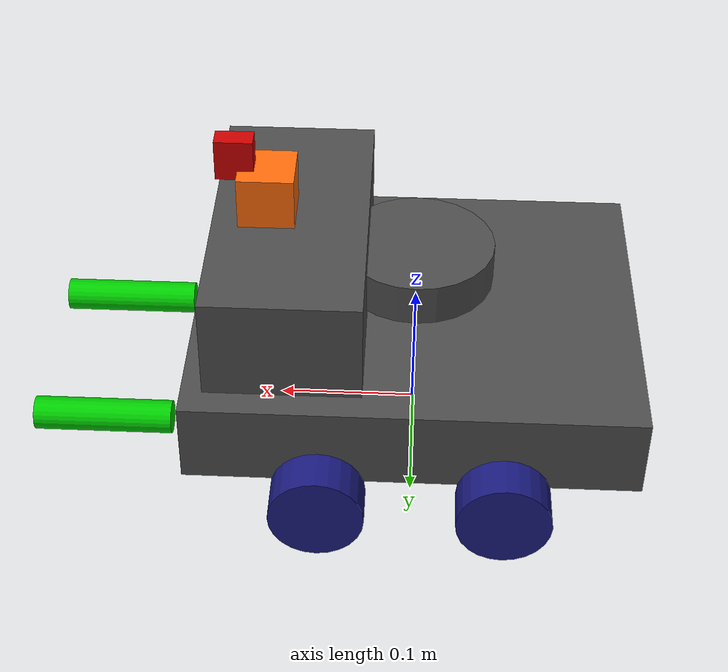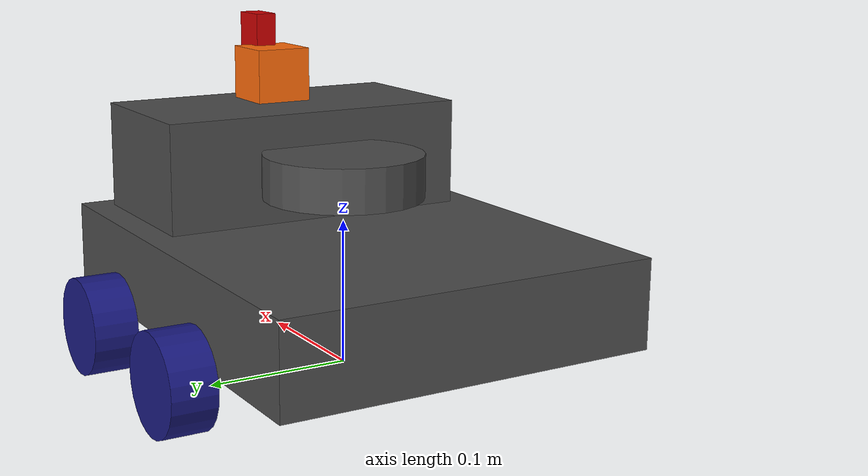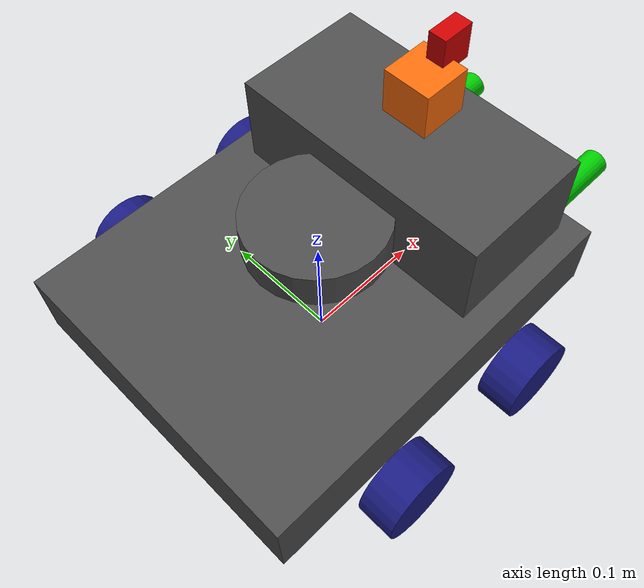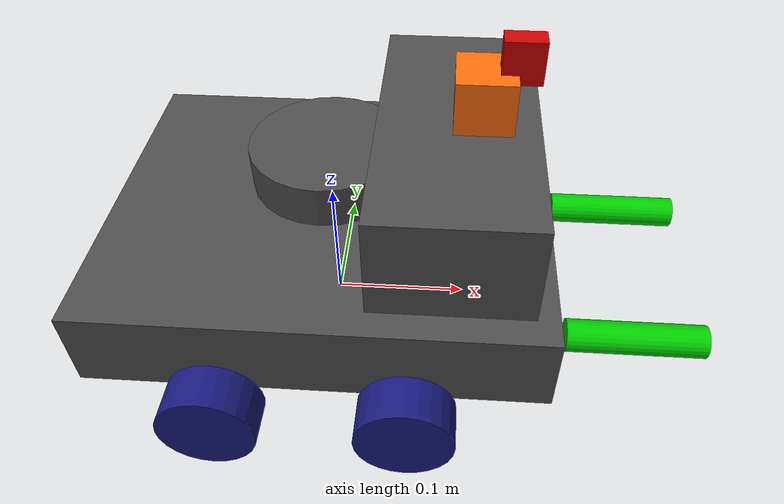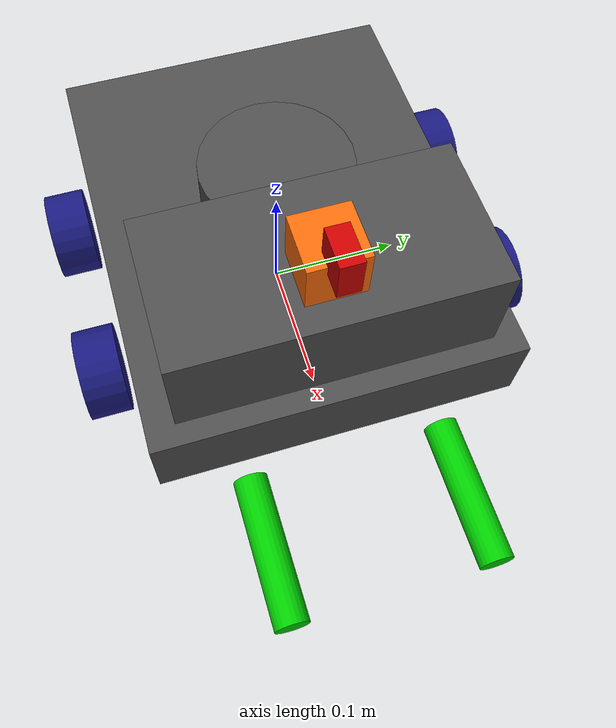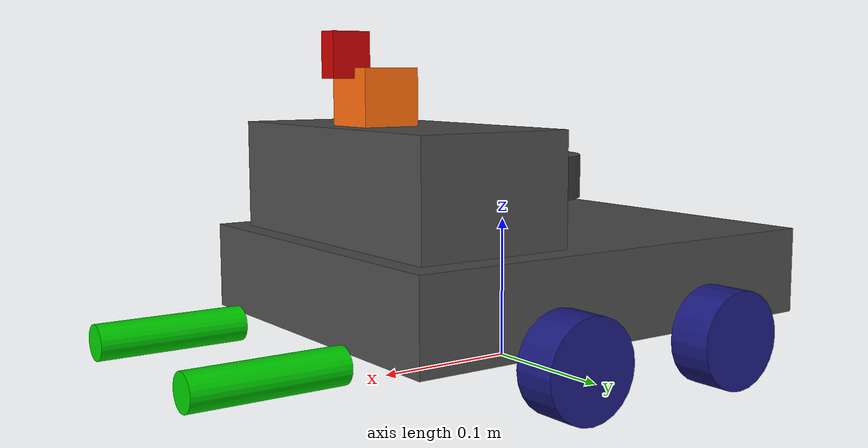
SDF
<?xml version="1.0" ?>
<sdf version="1.9">
  <model name="mecanumbot">
    <pose>0 0 0.0096 0 0 0</pose>

    <link name="base_link">
      <inertial>
        <mass>3.0</mass>
        <pose>0 0 0.06 0 0 0</pose>
        <inertia>
          <ixx>0.04</ixx><ixy>0</ixy><ixz>0</ixz>
          <iyy>0.04</iyy><iyz>0</iyz>
          <izz>0.04</izz>
        </inertia>
      </inertial>

      <collision name="body_collision">
        <pose>0 0 0.055 0 0 0</pose>
        <geometry><box><size>0.32 0.26 0.06</size></box></geometry>
        <surface>
          <friction><ode><mu>1.0</mu><mu2>1.0</mu2></ode></friction>
        </surface>
      </collision>

      <visual name="body_visual">
        <pose>0 0 0.055 0 0 0</pose>
        <geometry><box><size>0.32 0.26 0.06</size></box></geometry>
        <material><ambient>0.3 0.3 0.3 1</ambient><diffuse>0.3 0.3 0.3 1</diffuse></material>
      </visual>

      <visual name="tower_visual">
        <pose>0.09 0 0.12 0 0 0</pose>
        <geometry><box><size>0.11 0.22 0.08</size></box></geometry>
        <material><ambient>0.3 0.3 0.3 1</ambient><diffuse>0.3 0.3 0.3 1</diffuse></material>
      </visual>
    </link>

    <!-- Wheels. Frictionless on purpose: see the header comment. -->
    <link name="wheel_frontleft_link">
      <pose relative_to="base_link">0.064 0.1522 0.02345 -1.5707963 0 0</pose>
      <inertial>
        <mass>0.15</mass>
        <inertia><ixx>0.0002</ixx><ixy>0</ixy><ixz>0</ixz><iyy>0.0002</iyy><iyz>0</iyz><izz>0.0002</izz></inertia>
      </inertial>
      <collision name="collision">
        <geometry><cylinder><radius>0.033</radius><length>0.030</length></cylinder></geometry>
        <surface><friction><ode><mu>0.0</mu><mu2>0.0</mu2></ode></friction></surface>
      </collision>
      <visual name="visual">
        <geometry><cylinder><radius>0.033</radius><length>0.030</length></cylinder></geometry>
        <material><ambient>0.1 0.1 0.5 1</ambient><diffuse>0.1 0.1 0.5 1</diffuse></material>
      </visual>
    </link>
    <joint name="wheel_frontleft_joint" type="revolute">
      <parent>base_link</parent><child>wheel_frontleft_link</child>
      <axis><xyz>0 0 1</xyz><limit><lower>-1e16</lower><upper>1e16</upper></limit></axis>
    </joint>

    <link name="wheel_backleft_link">
      <pose relative_to="base_link">-0.064 0.1522 0.02345 -1.5707963 0 0</pose>
      <inertial>
        <mass>0.15</mass>
        <inertia><ixx>0.0002</ixx><ixy>0</ixy><ixz>0</ixz><iyy>0.0002</iyy><iyz>0</iyz><izz>0.0002</izz></inertia>
      </inertial>
      <collision name="collision">
        <geometry><cylinder><radius>0.033</radius><length>0.030</length></cylinder></geometry>
        <surface><friction><ode><mu>0.0</mu><mu2>0.0</mu2></ode></friction></surface>
      </collision>
      <visual name="visual">
        <geometry><cylinder><radius>0.033</radius><length>0.030</length></cylinder></geometry>
        <material><ambient>0.1 0.1 0.5 1</ambient><diffuse>0.1 0.1 0.5 1</diffuse></material>
      </visual>
    </link>
    <joint name="wheel_backleft_joint" type="revolute">
      <parent>base_link</parent><child>wheel_backleft_link</child>
      <axis><xyz>0 0 1</xyz><limit><lower>-1e16</lower><upper>1e16</upper></limit></axis>
    </joint>

    <link name="wheel_frontright_link">
      <pose relative_to="base_link">0.064 -0.1522 0.02345 1.5707963 0 0</pose>
      <inertial>
        <mass>0.15</mass>
        <inertia><ixx>0.0002</ixx><ixy>0</ixy><ixz>0</ixz><iyy>0.0002</iyy><iyz>0</iyz><izz>0.0002</izz></inertia>
      </inertial>
      <collision name="collision">
        <geometry><cylinder><radius>0.033</radius><length>0.030</length></cylinder></geometry>
        <surface><friction><ode><mu>0.0</mu><mu2>0.0</mu2></ode></friction></surface>
      </collision>
      <visual name="visual">
        <geometry><cylinder><radius>0.033</radius><length>0.030</length></cylinder></geometry>
        <material><ambient>0.1 0.1 0.5 1</ambient><diffuse>0.1 0.1 0.5 1</diffuse></material>
      </visual>
    </link>
    <joint name="wheel_frontright_joint" type="revolute">
      <parent>base_link</parent><child>wheel_frontright_link</child>
      <axis><xyz>0 0 1</xyz><limit><lower>-1e16</lower><upper>1e16</upper></limit></axis>
    </joint>

    <link name="wheel_backright_link">
      <pose relative_to="base_link">-0.064 -0.1522 0.02345 1.5707963 0 0</pose>
      <inertial>
        <mass>0.15</mass>
        <inertia><ixx>0.0002</ixx><ixy>0</ixy><ixz>0</ixz><iyy>0.0002</iyy><iyz>0</iyz><izz>0.0002</izz></inertia>
      </inertial>
      <collision name="collision">
        <geometry><cylinder><radius>0.033</radius><length>0.030</length></cylinder></geometry>
        <surface><friction><ode><mu>0.0</mu><mu2>0.0</mu2></ode></friction></surface>
      </collision>
      <visual name="visual">
        <geometry><cylinder><radius>0.033</radius><length>0.030</length></cylinder></geometry>
        <material><ambient>0.1 0.1 0.5 1</ambient><diffuse>0.1 0.1 0.5 1</diffuse></material>
      </visual>
    </link>
    <joint name="wheel_backright_joint" type="revolute">
      <parent>base_link</parent><child>wheel_backright_link</child>
      <axis><xyz>0 0 1</xyz><limit><lower>-1e16</lower><upper>1e16</upper></limit></axis>
    </joint>

    <!-- Accessories: the neck tilt carries the camera and is the gesture channel
         for the Doglike condition, so it is actuated here and not just in RViz. -->
    <link name="head_link">
      <pose relative_to="base_link">0.1063 0 0.1679 1.5707963 0 0</pose>
      <inertial>
        <mass>0.08</mass>
        <inertia><ixx>0.0002</ixx><ixy>0</ixy><ixz>0</ixz><iyy>0.0002</iyy><iyz>0</iyz><izz>0.0002</izz></inertia>
      </inertial>
      <visual name="visual">
        <geometry><box><size>0.04 0.06 0.04</size></box></geometry>
        <material><ambient>1.0 0.42 0.04 1</ambient><diffuse>1.0 0.42 0.04 1</diffuse></material>
      </visual>
    </link>
    <joint name="head_joint" type="revolute">
      <parent>base_link</parent><child>head_link</child>
      <axis><xyz>0 0 1</xyz><limit><lower>-1.57</lower><upper>1.57</upper><effort>5.0</effort><velocity>1.0</velocity></limit></axis>
    </joint>

    <link name="camera_link">
      <pose relative_to="head_link">0.022 0.038 0 0 -1.5707963 0</pose>
      <inertial>
        <mass>0.01</mass>
        <inertia><ixx>1e-5</ixx><ixy>0</ixy><ixz>0</ixz><iyy>1e-5</iyy><iyz>0</iyz><izz>1e-5</izz></inertia>
      </inertial>
      <visual name="visual">
        <geometry><box><size>0.015 0.030 0.027</size></box></geometry>
        <material><ambient>0.8 0 0 1</ambient><diffuse>0.8 0 0 1</diffuse></material>
      </visual>
      <sensor name="camera" type="camera">
        <pose>0 0 0 0 1.5707963 0</pose>
        <update_rate>15</update_rate>
        <topic>camera/image_raw</topic>
        <camera>
          <horizontal_fov>1.0471976</horizontal_fov>
          <image><width>640</width><height>480</height><format>R8G8B8</format></image>
          <clip><near>0.05</near><far>12.0</far></clip>
        </camera>
      </sensor>
    </link>
    <joint name="camera_joint" type="fixed">
      <parent>head_link</parent><child>camera_link</child>
    </joint>

    <link name="grabber_left_link">
      <pose relative_to="base_link">0.174 0.070 0.024 0 0 0</pose>
      <inertial>
        <mass>0.05</mass>
        <inertia><ixx>1e-4</ixx><ixy>0</ixy><ixz>0</ixz><iyy>1e-4</iyy><iyz>0</iyz><izz>1e-4</izz></inertia>
      </inertial>
      <collision name="collision">
        <pose>0.05 0 0 0 1.5707963 0</pose>
        <geometry><cylinder><radius>0.012</radius><length>0.10</length></cylinder></geometry>
        <surface>
          <friction><ode><mu>1.5</mu><mu2>1.5</mu2></ode></friction>
        </surface>
      </collision>
      <visual name="visual">
        <pose>0.05 0 0 0 1.5707963 0</pose>
        <geometry><cylinder><radius>0.012</radius><length>0.10</length></cylinder></geometry>
        <material><ambient>0 0.8 0 1</ambient><diffuse>0 0.8 0 1</diffuse></material>
      </visual>
    </link>
    <joint name="grabber_left_joint" type="revolute">
      <parent>base_link</parent><child>grabber_left_link</child>
      <axis><xyz>0 0 -1</xyz><limit><lower>-1.57</lower><upper>1.57</upper><effort>5.0</effort><velocity>1.0</velocity></limit></axis>
    </joint>

    <link name="grabber_right_link">
      <pose relative_to="base_link">0.174 -0.070 0.024 0 0 0</pose>
      <inertial>
        <mass>0.05</mass>
        <inertia><ixx>1e-4</ixx><ixy>0</ixy><ixz>0</ixz><iyy>1e-4</iyy><iyz>0</iyz><izz>1e-4</izz></inertia>
      </inertial>
      <collision name="collision">
        <pose>0.05 0 0 0 1.5707963 0</pose>
        <geometry><cylinder><radius>0.012</radius><length>0.10</length></cylinder></geometry>
        <surface>
          <friction><ode><mu>1.5</mu><mu2>1.5</mu2></ode></friction>
        </surface>
      </collision>
      <visual name="visual">
        <pose>0.05 0 0 0 1.5707963 0</pose>
        <geometry><cylinder><radius>0.012</radius><length>0.10</length></cylinder></geometry>
        <material><ambient>0 0.8 0 1</ambient><diffuse>0 0.8 0 1</diffuse></material>
      </visual>
    </link>
    <joint name="grabber_right_joint" type="revolute">
      <parent>base_link</parent><child>grabber_right_link</child>
      <axis><xyz>0 0 1</xyz><limit><lower>-1.57</lower><upper>1.57</upper><effort>5.0</effort><velocity>1.0</velocity></limit></axis>
    </joint>

    <!-- LD08 lidar. Ray count, span and range match the MuJoCo backend's
         scan parameters so DR-SPAAM sees the same input shape on both. -->
    <link name="base_scan">
      <pose relative_to="base_link">0 0 0.122 0 0 0</pose>
      <inertial>
        <mass>0.114</mass>
        <inertia><ixx>0.001</ixx><ixy>0</ixy><ixz>0</ixz><iyy>0.001</iyy><iyz>0</iyz><izz>0.001</izz></inertia>
      </inertial>
      <visual name="visual">
        <geometry><cylinder><radius>0.055</radius><length>0.030</length></cylinder></geometry>
        <material><ambient>0.3 0.3 0.3 1</ambient><diffuse>0.3 0.3 0.3 1</diffuse></material>
      </visual>
      <sensor name="lidar" type="gpu_lidar">
        <pose>0 0 0 0 0 0</pose>
        <update_rate>8</update_rate>
        <topic>scan_raw</topic>
        <always_on>true</always_on>
        <visualize>false</visualize>
        <lidar>
          <scan>
            <horizontal>
              <samples>240</samples>
              <resolution>1</resolution>
              <min_angle>-3.141592653589793</min_angle>
              <max_angle>3.141592653589793</max_angle>
            </horizontal>
          </scan>
          <range>
            <min>0.02</min>
            <max>8.0</max>
            <resolution>0.01</resolution>
          </range>
        </lidar>
      </sensor>
    </link>
    <joint name="scan_joint" type="fixed">
      <parent>base_link</parent><child>base_scan</child>
    </joint>

    <link name="imu_link">
      <pose relative_to="base_link">0 0 0.068 0 0 0</pose>
      <inertial>
        <mass>0.01</mass>
        <inertia><ixx>1e-6</ixx><ixy>0</ixy><ixz>0</ixz><iyy>1e-6</iyy><iyz>0</iyz><izz>1e-6</izz></inertia>
      </inertial>
      <sensor name="imu" type="imu">
        <update_rate>100</update_rate>
        <topic>imu_raw</topic>
        <always_on>true</always_on>
      </sensor>
    </link>
    <joint name="imu_joint" type="fixed">
      <parent>base_link</parent><child>imu_link</child>
    </joint>

    <!-- Base motion. cmd_vel here is already world-framed by gz_io_node when its
         `velocity_frame` parameter says so; see that node's docstring. -->
    <plugin filename="ignition-gazebo-velocity-control-system"
            name="ignition::gazebo::systems::VelocityControl">
      <topic>/model/mecanumbot/cmd_vel</topic>
    </plugin>

    <plugin filename="ignition-gazebo-joint-state-publisher-system"
            name="ignition::gazebo::systems::JointStatePublisher">
      <topic>/model/mecanumbot/joint_state</topic>
    </plugin>

    <plugin filename="ignition-gazebo-pose-publisher-system"
            name="ignition::gazebo::systems::PosePublisher">
      <publish_link_pose>false</publish_link_pose>
      <publish_collision_pose>false</publish_collision_pose>
      <publish_visual_pose>false</publish_visual_pose>
      <publish_model_pose>true</publish_model_pose>
      <publish_nested_model_pose>false</publish_nested_model_pose>
      <use_pose_vector_msg>false</use_pose_vector_msg>
      <update_frequency>50</update_frequency>
    </plugin>

    <plugin filename="ignition-gazebo-joint-position-controller-system"
            name="ignition::gazebo::systems::JointPositionController">
      <joint_name>head_joint</joint_name>
      <topic>/model/mecanumbot/head_joint/cmd_pos</topic>
      <p_gain>2.0</p_gain><i_gain>0.0</i_gain><d_gain>0.1</d_gain>
    </plugin>

    <plugin filename="ignition-gazebo-joint-position-controller-system"
            name="ignition::gazebo::systems::JointPositionController">
      <joint_name>grabber_left_joint</joint_name>
      <topic>/model/mecanumbot/grabber_left_joint/cmd_pos</topic>
      <p_gain>2.0</p_gain><i_gain>0.0</i_gain><d_gain>0.1</d_gain>
    </plugin>

    <plugin filename="ignition-gazebo-joint-position-controller-system"
            name="ignition::gazebo::systems::JointPositionController">
      <joint_name>grabber_right_joint</joint_name>
      <topic>/model/mecanumbot/grabber_right_joint/cmd_pos</topic>
      <p_gain>2.0</p_gain><i_gain>0.0</i_gain><d_gain>0.1</d_gain>
    </plugin>

  </model>
</sdf>
